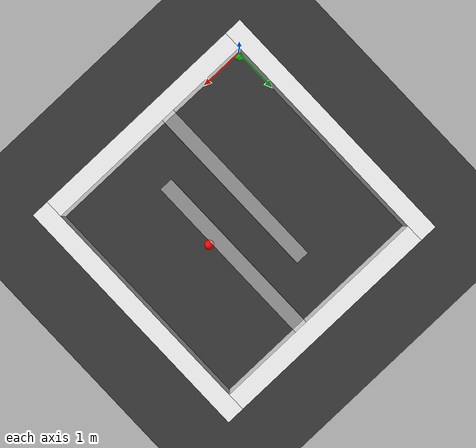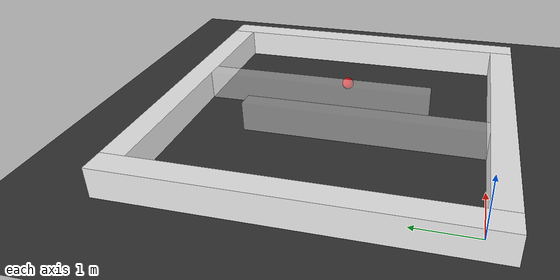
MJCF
<?xml version="1.0" encoding="utf-8"?>
<mujoco>
    <compiler angle="radian" coordinate="local"></compiler>
    <option timestep="0.005">
        <flag warmstart="enable"></flag>
    </option>

    <asset>
        <material name="floor_mat" specular="0" shininess="0.5" reflectance="0" rgba="0.2 0.2 0.2 1"></material>
        <material name="table_mat" specular="0" shininess="0.5" reflectance="0" rgba="0.93 0.93 0.93 1"></material>
        <material name="block_mat" specular="0" shininess="0.5" reflectance="0" rgba="0.1 0.1 0.5 1"></material>
        <material name="stick_mat" specular="0" shininess="0.5" reflectance="0" rgba="0.5 0.2 0.0 0.5"></material>
    </asset>

    <worldbody>
        <geom name="floor0" pos="2.5 2.5 0" size="30 30 1" type="plane" condim="3" material="floor_mat"></geom>
        <body name="floor0" pos="2.5 2.5 0">
            <site name="target0" pos="0.7 0.0 0.4" size="0.10 0.10 0.10" rgba="1 0 0 1" type="sphere"></site>
        </body>

        <geom name="bound0" pos="-0.2 2.5 0.25" size="0.2 2.9 0.25" type="box" mass="2000" material="table_mat"></geom>
        <geom name="bound1" pos="5.2 2.5 0.25" size="0.2 2.9 0.25" type="box" mass="2000" material="table_mat"></geom>
        <geom name="bound2" pos="2.5 -0.2 0.25" size="2.5 0.2 0.25" type="box" mass="2000" material="table_mat"></geom>
        <geom name="bound3" pos="2.5 5.2 0.25" size="2.5 0.2 0.25" type="box" mass="2000" material="table_mat"></geom>
        <geom name="wall0" pos="2.0 2.0 0.25" size="0.15 2.0 0.25" type="box" condim="3" mass="100" material="table_mat"
              rgba="0.93 0.93 0.93 0.5"></geom>
        <geom name="wall1" pos="3.0 3.0 0.25" size="0.15 2.0 0.25" type="box" condim="3" mass="100" material="table_mat"
              rgba="0.93 0.93 0.93 0.5"></geom>

        <body pos="0 0 0" name="masspoint">
            <geom name="masspoint" size="0.15" type="sphere" material="stick_mat" mass="1" euler="1.57 0 0"
                  rgba="0.1 1.0 0.1 1"></geom>
            <joint axis="1 0 0" name="masspoint:slidex" type="slide" damping="0.1"></joint>
            <joint axis="0 1 0" name="masspoint:slidey" type="slide" damping="0.1"></joint>
            <joint axis="0 0 1" name="masspoint:slidez" type="slide" damping="10000"></joint>
            <site name="masspoint" pos="0 0 0" size="0.02 0.02 0.02" rgba="0.1 1.0 0.1 1" type="sphere"></site>
        </body>

        <light directional="true" ambient="0.2 0.2 0.2" diffuse="0.8 0.8 0.8" specular="0.3 0.3 0.3" castshadow="false"
               pos="0 0 4" dir="0 0 -1" name="light0"></light>
    </worldbody>

    <actuator>
        <motor gear="100" joint="masspoint:slidex"></motor>
        <motor gear="100" joint="masspoint:slidey"></motor>
    </actuator>
</mujoco>
